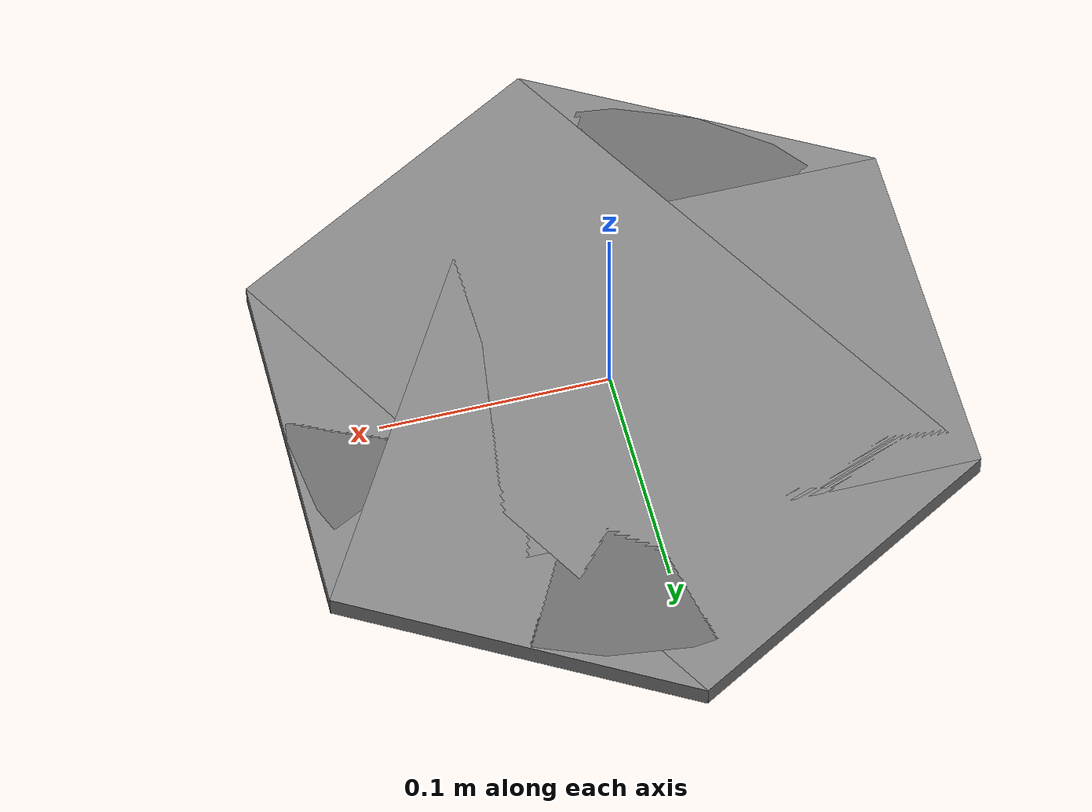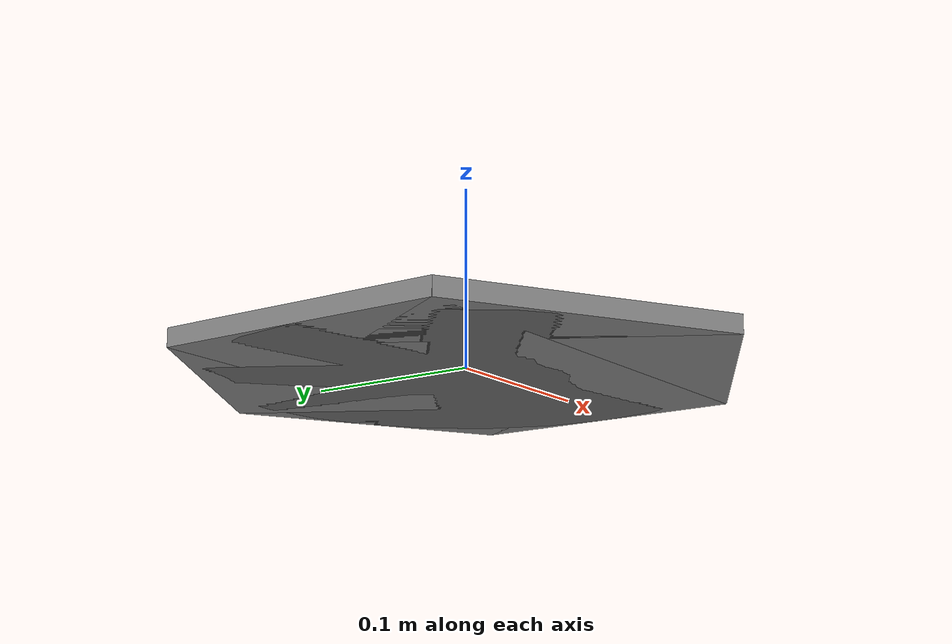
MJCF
<mujoco model="plate">
  <asset>
    <texture type="2d" name="plate_tex" builtin="flat" rgb1="0.4 0.4 0.4" width="512" height="512"/>
    <material name="plate_mat" texture="plate_tex" texuniform="true" reflectance="0.1"/>
  </asset>
  <worldbody>
    <body>
      <body name="object">
        <geom pos="0 0 0" size="0.14 0.005" type="cylinder" material="plate_mat" group="1" conaffinity="0" contype="0"/>
        <geom type="box" pos="0 0 0" size="0.14 0.0808 0.005" quat="1.0 0.0 0.0 0.0" solimp="0.998 0.998 0.001" solref="0.001 2" density="100" friction="0.95 0.3 0.1" group="0"/>
        <geom type="box" pos="0 0 0" size="0.14 0.0808 0.005" quat="0.8660254037844387 0.0 0.0 0.49999999999999994" solimp="0.998 0.998 0.001" solref="0.001 2" density="100" friction="0.95 0.3 0.1" group="0"/>
        <geom type="box" pos="0 0 0" size="0.14 0.0808 0.005" quat="0.5000000000000001 0.0 0.0 0.8660254037844386" solimp="0.998 0.998 0.001" solref="0.001 2" density="100" friction="0.95 0.3 0.1" group="0"/>
      </body>
      <site rgba="0 0 0 0" size="0.005" pos="0 0 -0.005" name="bottom_site"/>
      <site rgba="0 0 0 0" size="0.005" pos="0 0 0.005" name="top_site"/>
      <site rgba="0 0 0 0" size="0.005" pos="0.03 0.03 0" name="horizontal_radius_site"/>
    </body>
  </worldbody>
</mujoco>
